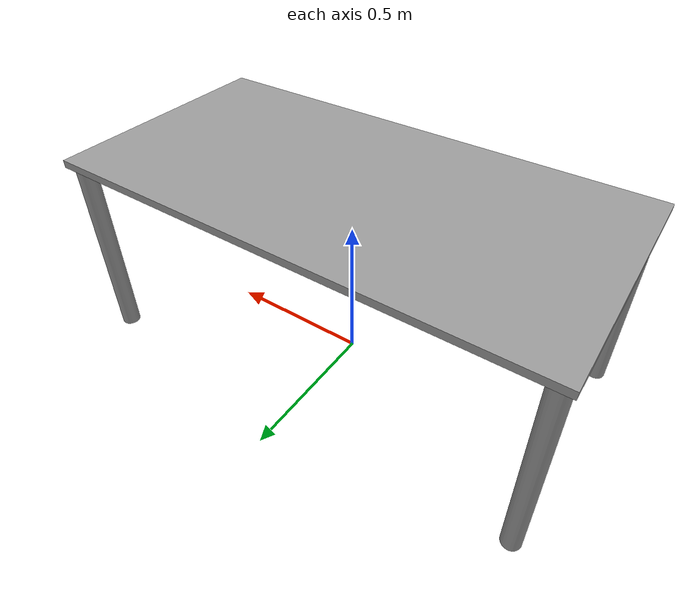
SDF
<?xml version="1.0" ?>
<sdf version="1.4">
  <model name="tams_table">
    <static>true</static>
    <link name="link">
      <collision name="surface">
        <pose>0 0 0.66 0 0 0</pose>
        <geometry>
          <box>
            <size>1.6 0.8 0.025</size>
          </box>
        </geometry>
        <surface>
          <friction>
            <ode>
              <mu>0.6</mu>
              <mu2>0.6</mu2>
            </ode>
          </friction>
        </surface>
      </collision>
      <visual name="surface">
        <pose>0 0 0.66 0 0 0</pose>
        <geometry>
          <box>
            <size>1.6 0.8 0.025</size>
          </box>
        </geometry>
        <material>
          <script>
            <uri>file://media/materials/scripts/gazebo.material</uri>
            <name>Gazebo/Grey</name>
          </script>
        </material>
      </visual>
      <collision name="front_left_leg">
        <pose>0.76 0.36 0.33 0 0 0</pose>
        <geometry>
          <cylinder>
            <radius>0.03</radius>
            <length>0.66</length>
          </cylinder>
        </geometry>
      </collision>
      <visual name="front_left_leg">
        <pose>0.76 0.36 0.33 0 0 0</pose>
        <geometry>
          <cylinder>
            <radius>0.03</radius>
            <length>0.66</length>
          </cylinder>
        </geometry>
        <material>
          <script>
            <uri>file://media/materials/scripts/gazebo.material</uri>
            <name>Gazebo/Grey</name>
          </script>
        </material>
      </visual>
      <collision name="front_right_leg">
        <pose>0.76 -0.36 0.33 0 0 0</pose>
        <geometry>
          <cylinder>
            <radius>0.03</radius>
            <length>0.66</length>
          </cylinder>
        </geometry>
      </collision>
      <visual name="front_right_leg">
        <pose>0.76 -0.36 0.33 0 0 0</pose>
        <geometry>
          <cylinder>
            <radius>0.03</radius>
            <length>0.66</length>
          </cylinder>
        </geometry>
        <material>
          <script>
            <uri>file://media/materials/scripts/gazebo.material</uri>
            <name>Gazebo/Grey</name>
          </script>
        </material>
      </visual>
      <collision name="back_right_leg">
        <pose>-0.76 -0.36 0.33 0 0 0</pose>
        <geometry>
          <cylinder>
            <radius>0.03</radius>
            <length>0.66</length>
          </cylinder>
        </geometry>
      </collision>
      <visual name="back_right_leg">
        <pose>-0.76 -0.36 0.33 0 0 0</pose>
        <geometry>
          <cylinder>
            <radius>0.03</radius>
            <length>0.66</length>
          </cylinder>
        </geometry>
        <material>
          <script>
            <uri>file://media/materials/scripts/gazebo.material</uri>
            <name>Gazebo/Grey</name>
          </script>
        </material>
      </visual>
      <collision name="back_left_leg">
        <pose>-0.76 0.36 0.33 0 0 0</pose>
        <geometry>
          <cylinder>
            <radius>0.03</radius>
            <length>0.66</length>
          </cylinder>
        </geometry>
      </collision>
      <visual name="back_left_leg">
        <pose>-0.76 0.36 0.33 0 0 0</pose>
        <geometry>
          <cylinder>
            <radius>0.03</radius>
            <length>0.66</length>
          </cylinder>
        </geometry>
        <material>
          <script>
            <uri>file://media/materials/scripts/gazebo.material</uri>
            <name>Gazebo/Grey</name>
          </script>
        </material>
      </visual>
    </link>
  </model>
</sdf>
